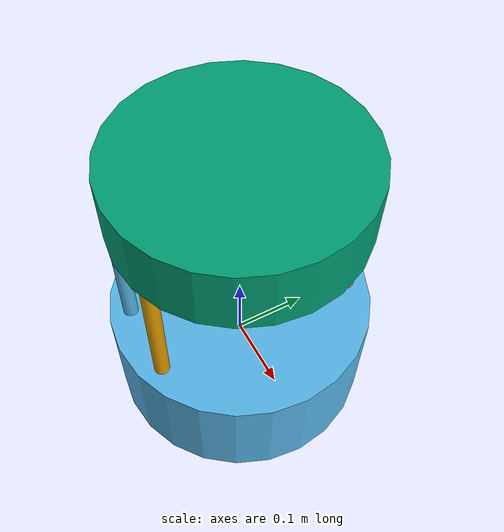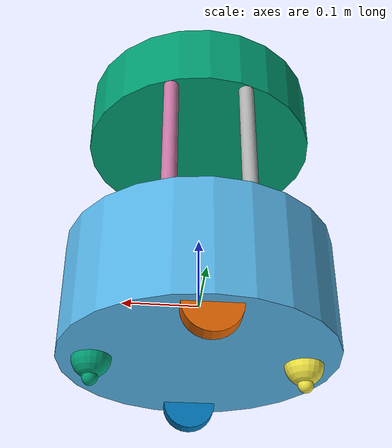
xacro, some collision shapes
<?xml version="1.0"?>

<robot xmlns:xacro="http://www.ros.org/wiki/xacro" name ="barista_robot">

  <xacro:arg name="robot_name" default="barista_robot"/>
  <xacro:property name="robot_name" value="$(arg robot_name)"/>

  <!-- Arguments -->
  <xacro:arg name="include_laser" default="true"/>
  <xacro:property name="include_laser" value="$(arg include_laser)" />

  <!-- Include wheel macro -->
  <xacro:include filename="$(find barista_robot_description)/xacro/wheel.xacro" />
  <!-- Include standoff macro -->
  <xacro:include filename="$(find barista_robot_description)/xacro/standoff.xacro" />
  <!-- Include cup holder tray macro -->
  <xacro:include filename="$(find barista_robot_description)/xacro/cup_holder_tray.xacro" />
  <!-- Include laser scanner macro conditionally -->
  <xacro:include filename="$(find barista_robot_description)/xacro/laser_scanner.xacro" />

    <link name="base_footprint"/>

    <joint name="base_joint" type="fixed">
        <parent link="base_footprint"/>
        <child link="base_link"/>
        <origin xyz="0.0 0.0 0.0" rpy="0 0 0"/>
    </joint>

    <!-- Base link -->
    <link name="base_link">
        <visual>
            <geometry>
                <cylinder length="0.155" radius="0.178"></cylinder> <!-- Adjust dimensions -->
            </geometry>
        </visual>
        <collision>
            <geometry>
                <cylinder length="0.155" radius="0.178"></cylinder> <!-- Adjust dimensions -->
            </geometry>
        </collision>
        <inertial>
            <mass value="10"/>
            <origin xyz="0 0 0" rpy="0 0 0"/>
            <inertia ixx="0.099" ixy="0" ixz="0" iyy="0.099" iyz="0" izz="0.158"/>
        </inertial>
    </link>

    <link name="caster_front">
        <visual>
            <geometry>
                <sphere radius="0.0252"/>
            </geometry>
        </visual>
        <visual>
            <origin rpy="0 0 0" xyz="0 0 -0.0252"/>
            <geometry>
                <sphere radius="0.01"/>
            </geometry>
        </visual>
        <collision>
            <geometry>
                <sphere radius="0.0352"/>
            </geometry>
        </collision>
        <inertial>
            <mass value="0.01"/>
            <origin rpy="0 1.5707 1.5707" xyz="0 0 0"/>
            <inertia ixx="0.000004234" ixy="0" ixz="0" iyy="0.000004234" iyz="0" izz="0.000004234"/>
        </inertial>
    </link>
    <joint name="caster_front_joint" type="fixed">
        <origin rpy="0 0 0" xyz="0.133 0 -0.0775" />
        <parent link="base_link" />
        <child link="caster_front" />
    </joint>
    <gazebo reference="caster_front">
            <mu1>0</mu1>
            <mu2>0</mu2>
    </gazebo>

    <link name="caster_rear">
        <visual>
            <geometry>
                <sphere radius="0.0252"/>
            </geometry>
        </visual>
        <visual>
            <origin rpy="0 0 0" xyz="0 0 -0.0252"/>
            <geometry>
                <sphere radius="0.01"/>
            </geometry>
        </visual>
        <collision>
            <geometry>
                <sphere radius="0.0352"/>
            </geometry>
        </collision>
        <inertial>
            <mass value="0.1"/>
            <origin rpy="0 0 0" xyz="0 0 0"/>
            <inertia ixx="0.000004234" ixy="0" ixz="0" iyy="0.000004234" iyz="0" izz="0.000004234"/>
        </inertial>
    </link>
    <joint name="caster_rear_joint" type="fixed">
        <origin rpy="0 0 0" xyz="-0.133 0 -0.0775" />
        <parent link="base_link" />
        <child link="caster_rear" />
    </joint>
    <gazebo reference="caster_rear">
            <mu1>0</mu1>
            <mu2>0</mu2>
    </gazebo>

  <!-- Call wheel macro twice for two wheels -->
  <xacro:wheel wheel_name="wheel_right"/>
    <joint name="wheel_right_joint" type="continuous">
        <origin rpy="0 0 0" xyz="0 -0.15 -0.0775" />
        <parent link="base_link" />
        <child link="wheel_right" />
        <axis rpy="0 0 0" xyz="0 1 0"/>
        <limit effort="1.5" velocity="20"/>
    </joint>

  <xacro:wheel wheel_name="wheel_left"/>
  <joint name="wheel_left_joint" type="continuous">
        <origin rpy="0 0 0" xyz="0 0.15 -0.0775" />
        <parent link="base_link" />
        <child link="wheel_left" />
        <axis rpy="0 0 0" xyz="0 1 0"/>
        <limit effort="1.5" velocity="20"/>
    </joint>

  <!-- Call standoff macro four times with different parameters -->
  <xacro:standoff  standoff_name="standoff1" />
  <joint name="standoff1_joint" type="fixed">
        <origin rpy="0 0 0" xyz="0.05 0.14 0.1875" />
        <parent link="base_link" />
        <child link="standoff1" />
    </joint>

  <xacro:standoff  standoff_name="standoff2" />
  <joint name="standoff2_joint" type="fixed">
        <origin rpy="0 0 0" xyz="-0.05 0.14 0.1875" />
        <parent link="base_link" />
        <child link="standoff2" />
  </joint>

  <xacro:standoff  standoff_name="standoff3" />
  <joint name="standoff3_joint" type="fixed">
        <origin rpy="0 0 0" xyz="0.05 -0.14 0.1875" />
        <parent link="base_link" />
        <child link="standoff3" />
    </joint>

    <xacro:standoff  standoff_name="standoff4" />
    <joint name="standoff4_joint" type="fixed">
        <origin rpy="0 0 0" xyz="-0.05 -0.14 0.1875" />
        <parent link="base_link" />
        <child link="standoff4" />
    </joint>

  <!-- Call cup holder tray macro with parameters -->
  <xacro:cup_holder_tray link_name="cup_tray" />
  <joint name="cup_tray_joint" type="fixed">
        <origin rpy="0 0 0" xyz="0 0 0.2975" />
        <parent link="base_link" />
        <child link="cup_tray" />
    </joint>

  <!-- Call laser scanner macro based on the value of include_laser -->
  <xacro:if value="${include_laser}">
    <xacro:laser_scanner robot_name="${robot_name}"/>
    <joint name="base_to_laser" type="fixed">
        <parent link="base_link"/>
        <child link="laser_link"/>
        <origin xyz="0 0 0.08"/> <!-- Adjust position -->
    </joint>
  </xacro:if>

   <gazebo>
        <plugin filename="libgazebo_ros_diff_drive.so" name="differential_drive_controller">

        <ros>
            <namespace>/${robot_name}</namespace>
            <remapping>/cmd_vel:=cmd_vel</remapping>
        </ros>

        <!-- wheels -->
        <left_joint>wheel_left_joint</left_joint>
        <right_joint>wheel_right_joint</right_joint>

        <!-- kinematics -->
        <wheel_separation>0.3</wheel_separation>
        <wheel_diameter>0.0704</wheel_diameter>

        <!-- limits -->
        <max_wheel_torque>1.0</max_wheel_torque>
        <max_wheel_acceleration>2.0</max_wheel_acceleration>

        <!-- output -->
        <odometry_frame>${robot_name}/odom</odometry_frame>>
        <robot_base_frame>${robot_name}/base_footprint</robot_base_frame>
        <publish_odom>true</publish_odom>
        <publish_odom_tf>true</publish_odom_tf>

        <odometry_frame>odom</odometry_frame>
        <robot_base_frame>base_footprint</robot_base_frame>

        </plugin>
    </gazebo>

     <gazebo>
    <plugin name="box_bot_joint_state" filename="libgazebo_ros_joint_state_publisher.so">
      <ros>
          <namespace>/${robot_name}</namespace>
          <remapping>~/out:=joint_states</remapping>
      </ros>
      <update_rate>30</update_rate>

      <joint_name>wheel_left_joint</joint_name>
      <joint_name>wheel_right_joint</joint_name>

    </plugin>
  </gazebo>

</robot>

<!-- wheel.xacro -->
<robot xmlns:xacro="http://www.ros.org/wiki/xacro" name ="barista_robot">

<xacro:macro name="wheel" params="wheel_name">

        <xacro:property name="wheel_radius" value="0.0352"/>
        <xacro:property name="wheel_width" value="0.0206"/>

        <link name="${wheel_name}">
            <visual>
                <origin rpy="1.5707 0 0" xyz="0 0 0"/>
                <geometry>
                    <cylinder length="${wheel_width}" radius="${wheel_radius}"/>
                </geometry>
            </visual>
            <collision>
                <origin rpy="1.5707 0 0" xyz="0 0 0"/>
                <geometry>
                    <cylinder length="${wheel_width}" radius="${wheel_radius}"/>
                </geometry>
            </collision>
            <inertial>
                <mass value="1"/>
                <origin xyz="0 0 0" rpy="0 0 0"/>
                <inertia ixx="0.000345" ixy="0" ixz="0" iyy="0.00062" iyz="0" izz="0.000345"/>
            </inertial>
        </link>

        <gazebo reference="${wheel_name}">
            <mu1>10</mu1>
            <mu2>10</mu2>
        </gazebo>

</xacro:macro>
</robot>

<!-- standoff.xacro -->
<robot xmlns:xacro="http://www.ros.org/wiki/xacro" name ="barista_robot">

<xacro:macro name="standoff" params="standoff_name">

        <xacro:property name="rod_lenght" value="0.220"/>
        <xacro:property name="rod_radius" value="0.01"/>

  <link name="${standoff_name}">
        <visual>
            <geometry>
                <cylinder length="${rod_lenght}" radius="${rod_radius}"/>
            </geometry>
            <origin rpy="0 0 0" xyz="0 0 0" />
        </visual>
        <collision>
            <geometry>
                <cylinder length="${rod_lenght}" radius="${rod_radius}"/>
            </geometry>
            <origin rpy="0 0 0" xyz="0 0 0" />
        </collision>
        <inertial>
            <mass value="0.8"/>
            <origin xyz="0 0 0" rpy="0 0 0"/>
            <inertia ixx="0.003247" ixy="0" ixz="0" iyy="0.003247" iyz="0" izz="4.0e-05"/>
        </inertial>
  </link>
</xacro:macro>
</robot>

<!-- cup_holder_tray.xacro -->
<robot xmlns:xacro="http://www.ros.org/wiki/xacro" name ="barista_robot">

<xacro:macro name="cup_holder_tray" params="link_name">
      <link name="${link_name}">
            <visual>
                <origin xyz="0 0 0" rpy="0 0 0"/>
                <geometry>
                    <cylinder length="0.09" radius="0.16"/>
                </geometry>
            </visual>
            <collision>
                <origin xyz="0 0 0" rpy="0 0 0"/>
                <geometry>
                    <cylinder length="0.09" radius="0.16"/>
                </geometry>
            </collision>
            <inertial>
                <mass value="4"/>
                <origin xyz="0 0 0" rpy="0 0 0"/>
                <inertia ixx="0.0283" ixy="0" ixz="0" iyy="0.0283" iyz="0" izz="0.0512"/>
            </inertial>
        </link>
</xacro:macro>
</robot>

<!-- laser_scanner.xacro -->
<robot xmlns:xacro="http://www.ros.org/wiki/xacro" name ="barista_robot">

<xacro:macro name="laser_scanner" params="robot_name">
  <link name="laser_link">
        <visual>
            <origin rpy="0 0 0" xyz="0 0 0"/>
            <geometry>
                <mesh
                  filename="package://barista_robot_description/meshes/hokuyo3d.dae" />
            </geometry>
        </visual>
        <collision>
            <geometry>
                <cylinder length="0.0206" radius="0.0352"></cylinder>
            </geometry>
        </collision>
        <inertial>
            <mass value="0.3"/>
            <origin xyz="0 0 0" rpy="0 0 0"/>
            <inertia ixx="0.000001" ixy="0" ixz="0" iyy="0.000001" iyz="0" izz="0.000001"/>
        </inertial>
    </link>

     <!-- Laser scan plugin -->
    <gazebo reference="laser_link">
        <sensor name="sensor_ray" type="ray">
            <pose>0.0615 0 0.085 0 0 0</pose>
            <ray>
            <scan>
                <horizontal>
                <samples>360</samples>
                <resolution>1.0</resolution>
                <min_angle>-3.14</min_angle>
                <max_angle>3.14</max_angle>
                </horizontal>
            </scan>
            <range>
                <min>0.2</min>
                <max>10</max>
            </range>
            </ray>
            <always_on>true</always_on>
            <visualize>false</visualize>
            <update_rate>10.0</update_rate>
            <plugin name="laser" filename="libgazebo_ros_ray_sensor.so">
            <ros>
                <namespace>/${robot_name}</namespace>
                <remapping>~/out:=scan</remapping>
            </ros>
            <output_type>sensor_msgs/LaserScan</output_type>
            <frame_name>${robot_name}/laser_link</frame_name>
            </plugin>
        </sensor>
    </gazebo>
</xacro:macro>
</robot>
